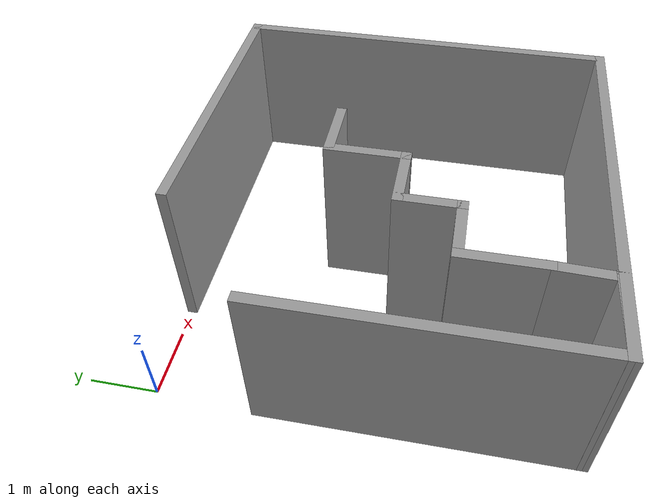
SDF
<?xml version='1.0'?>
<sdf version='1.7'>
  <model name='Untitled'>
    <pose>2.90987 -2.92502 0 0 -0 0</pose>
    <link name='Wall_0'>
      <collision name='Wall_0_Collision'>
        <geometry>
          <box>
            <size>4.5 0.15 2.5</size>
          </box>
        </geometry>
        <pose>0 0 1.25 0 -0 0</pose>
      </collision>
      <visual name='Wall_0_Visual'>
        <pose>0 0 1.25 0 -0 0</pose>
        <geometry>
          <box>
            <size>4.5 0.15 2.5</size>
          </box>
        </geometry>
        <material>
          <script>
            <uri>file://media/materials/scripts/gazebo.material</uri>
            <name>Gazebo/Grey</name>
          </script>
          <ambient>1 1 1 1</ambient>
        </material>
        <meta>
          <layer>0</layer>
        </meta>
      </visual>
      <pose>0.765126 2.92502 0 0 -0 0</pose>
    </link>
    <link name='Wall_10'>
      <collision name='Wall_10_Collision'>
        <geometry>
          <box>
            <size>1 0.15 2.5</size>
          </box>
        </geometry>
        <pose>0 0 1.25 0 -0 0</pose>
      </collision>
      <visual name='Wall_10_Visual'>
        <pose>0 0 1.25 0 -0 0</pose>
        <geometry>
          <box>
            <size>1 0.15 2.5</size>
          </box>
        </geometry>
        <material>
          <script>
            <uri>file://media/materials/scripts/gazebo.material</uri>
            <name>Gazebo/Grey</name>
          </script>
          <ambient>1 1 1 1</ambient>
        </material>
        <meta>
          <layer>0</layer>
        </meta>
      </visual>
      <pose>-1.38487 -0.97498 0 0 -0 0</pose>
    </link>
    <link name='Wall_13'>
      <collision name='Wall_13_Collision'>
        <geometry>
          <box>
            <size>1 0.15 2.5</size>
          </box>
        </geometry>
        <pose>0 0 1.25 0 -0 0</pose>
      </collision>
      <visual name='Wall_13_Visual'>
        <pose>0 0 1.25 0 -0 0</pose>
        <geometry>
          <box>
            <size>1 0.15 2.5</size>
          </box>
        </geometry>
        <material>
          <script>
            <uri>file://media/materials/scripts/gazebo.material</uri>
            <name>Gazebo/Grey</name>
          </script>
          <ambient>1 1 1 1</ambient>
        </material>
        <meta>
          <layer>0</layer>
        </meta>
      </visual>
      <pose>-0.959874 -0.54998 0 0 -0 1.5708</pose>
    </link>
    <link name='Wall_14'>
      <collision name='Wall_14_Collision'>
        <geometry>
          <box>
            <size>1 0.15 2.5</size>
          </box>
        </geometry>
        <pose>0 0 1.25 0 -0 0</pose>
      </collision>
      <visual name='Wall_14_Visual'>
        <pose>0 0 1.25 0 -0 0</pose>
        <geometry>
          <box>
            <size>1 0.15 2.5</size>
          </box>
        </geometry>
        <material>
          <script>
            <uri>file://media/materials/scripts/gazebo.material</uri>
            <name>Gazebo/Grey</name>
          </script>
          <ambient>1 1 1 1</ambient>
        </material>
        <meta>
          <layer>0</layer>
        </meta>
      </visual>
      <pose>-0.534874 -0.12498 0 0 -0 0</pose>
    </link>
    <link name='Wall_15'>
      <collision name='Wall_15_Collision'>
        <geometry>
          <box>
            <size>1.25 0.15 2.5</size>
          </box>
        </geometry>
        <pose>0 0 1.25 0 -0 0</pose>
      </collision>
      <visual name='Wall_15_Visual'>
        <pose>0 0 1.25 0 -0 0</pose>
        <geometry>
          <box>
            <size>1.25 0.15 2.5</size>
          </box>
        </geometry>
        <material>
          <script>
            <uri>file://media/materials/scripts/gazebo.material</uri>
            <name>Gazebo/Grey</name>
          </script>
          <ambient>1 1 1 1</ambient>
        </material>
        <meta>
          <layer>0</layer>
        </meta>
      </visual>
      <pose>-0.109874 0.42502 0 0 -0 1.5708</pose>
    </link>
    <link name='Wall_16'>
      <collision name='Wall_16_Collision'>
        <geometry>
          <box>
            <size>1 0.15 2.5</size>
          </box>
        </geometry>
        <pose>0 0 1.25 0 -0 0</pose>
      </collision>
      <visual name='Wall_16_Visual'>
        <pose>0 0 1.25 0 -0 0</pose>
        <geometry>
          <box>
            <size>1 0.15 2.5</size>
          </box>
        </geometry>
        <material>
          <script>
            <uri>file://media/materials/scripts/gazebo.material</uri>
            <name>Gazebo/Grey</name>
          </script>
          <ambient>1 1 1 1</ambient>
        </material>
        <meta>
          <layer>0</layer>
        </meta>
      </visual>
      <pose>0.315126 0.97502 0 0 -0 0</pose>
    </link>
    <link name='Wall_2'>
      <collision name='Wall_2_Collision'>
        <geometry>
          <box>
            <size>4.5 0.15 2.5</size>
          </box>
        </geometry>
        <pose>0 0 1.25 0 -0 0</pose>
      </collision>
      <visual name='Wall_2_Visual'>
        <pose>0 0 1.25 0 -0 0</pose>
        <geometry>
          <box>
            <size>4.5 0.15 2.5</size>
          </box>
        </geometry>
        <material>
          <script>
            <uri>file://media/materials/scripts/gazebo.material</uri>
            <name>Gazebo/Grey</name>
          </script>
          <ambient>1 1 1 1</ambient>
        </material>
        <meta>
          <layer>0</layer>
        </meta>
      </visual>
      <pose>-2.9388 -0.737153 0 0 -0 -1.5708</pose>
    </link>
    <link name='Wall_4'>
      <collision name='Wall_4_Collision'>
        <geometry>
          <box>
            <size>6.02897 0.15 2.5</size>
          </box>
        </geometry>
        <pose>0 0 1.25 0 -0 0</pose>
      </collision>
      <visual name='Wall_4_Visual'>
        <pose>0 0 1.25 0 -0 0</pose>
        <geometry>
          <box>
            <size>6.02897 0.15 2.5</size>
          </box>
        </geometry>
        <material>
          <script>
            <uri>file://media/materials/scripts/gazebo.material</uri>
            <name>Gazebo/Grey</name>
          </script>
          <ambient>1 1 1 1</ambient>
        </material>
        <meta>
          <layer>0</layer>
        </meta>
      </visual>
      <pose>0.000664 -2.92339 0 0 -0 -0.000542</pose>
    </link>
    <link name='Wall_5'>
      <collision name='Wall_5_Collision'>
        <geometry>
          <box>
            <size>6 0.15 2.5</size>
          </box>
        </geometry>
        <pose>0 0 1.25 0 -0 0</pose>
      </collision>
      <visual name='Wall_5_Visual'>
        <pose>0 0 1.25 0 -0 0</pose>
        <geometry>
          <box>
            <size>6 0.15 2.5</size>
          </box>
        </geometry>
        <material>
          <script>
            <uri>file://media/materials/scripts/gazebo.material</uri>
            <name>Gazebo/Grey</name>
          </script>
          <ambient>1 1 1 1</ambient>
        </material>
        <meta>
          <layer>0</layer>
        </meta>
      </visual>
      <pose>2.94013 2e-05 0 0 -0 1.5708</pose>
    </link>
    <link name='Wall_7'>
      <collision name='Wall_7_Collision'>
        <geometry>
          <box>
            <size>1.26948 0.15 2.5</size>
          </box>
        </geometry>
        <pose>0 0 1.25 0 -0 0</pose>
      </collision>
      <visual name='Wall_7_Visual'>
        <pose>0 0 1.25 0 -0 0</pose>
        <geometry>
          <box>
            <size>1.26948 0.15 2.5</size>
          </box>
        </geometry>
        <material>
          <script>
            <uri>file://media/materials/scripts/gazebo.material</uri>
            <name>Gazebo/Grey</name>
          </script>
          <ambient>1 1 1 1</ambient>
        </material>
        <meta>
          <layer>0</layer>
        </meta>
      </visual>
      <pose>-2.37916 -2.91133 0 0 -0 0.018688</pose>
    </link>
    <link name='Wall_8'>
      <collision name='Wall_8_Collision'>
        <geometry>
          <box>
            <size>0.966766 0.15 2.5</size>
          </box>
        </geometry>
        <pose>0 0 1.25 0 -0 0</pose>
      </collision>
      <visual name='Wall_8_Visual'>
        <pose>0 0 1.25 0 -0 0</pose>
        <geometry>
          <box>
            <size>0.966766 0.15 2.5</size>
          </box>
        </geometry>
        <material>
          <script>
            <uri>file://media/materials/scripts/gazebo.material</uri>
            <name>Gazebo/Grey</name>
          </script>
          <ambient>1 1 1 1</ambient>
        </material>
        <meta>
          <layer>0</layer>
        </meta>
      </visual>
      <pose>-1.82434 -2.48311 0 0 -0 1.53537</pose>
    </link>
    <link name='Wall_9'>
      <collision name='Wall_9_Collision'>
        <geometry>
          <box>
            <size>1.25 0.15 2.5</size>
          </box>
        </geometry>
        <pose>0 0 1.25 0 -0 0</pose>
      </collision>
      <visual name='Wall_9_Visual'>
        <pose>0 0 1.25 0 -0 0</pose>
        <geometry>
          <box>
            <size>1.25 0.15 2.5</size>
          </box>
        </geometry>
        <material>
          <script>
            <uri>file://media/materials/scripts/gazebo.material</uri>
            <name>Gazebo/Grey</name>
          </script>
          <ambient>1 1 1 1</ambient>
        </material>
        <meta>
          <layer>0</layer>
        </meta>
      </visual>
      <pose>-1.80987 -1.52498 0 0 -0 1.5708</pose>
    </link>
    <static>1</static>
  </model>
</sdf>
